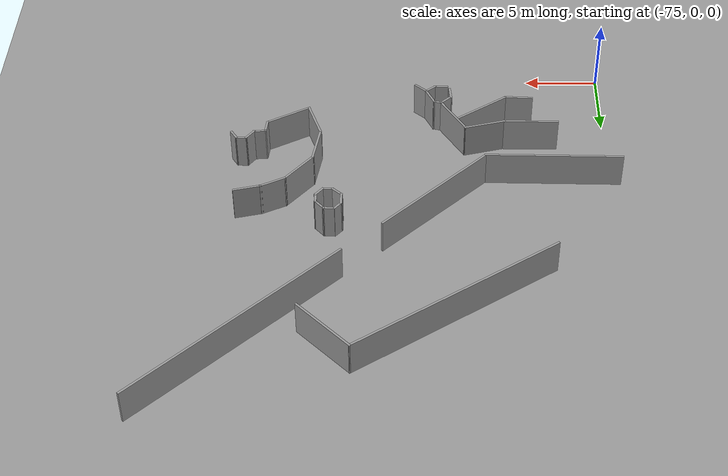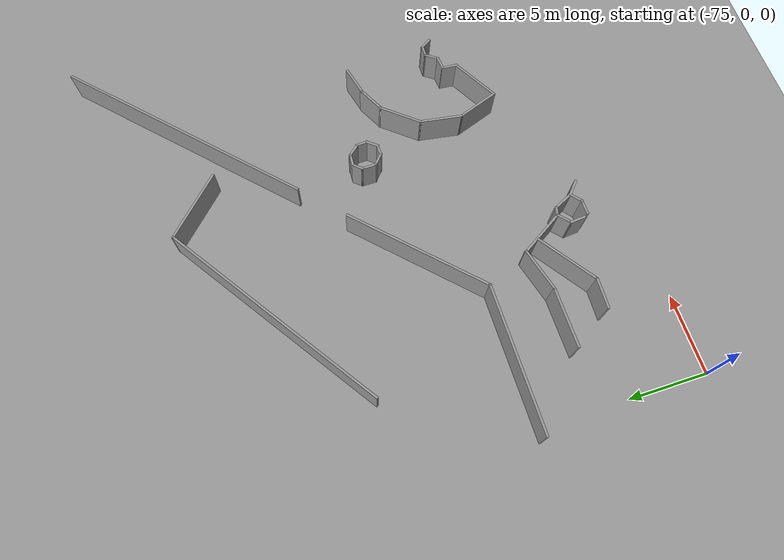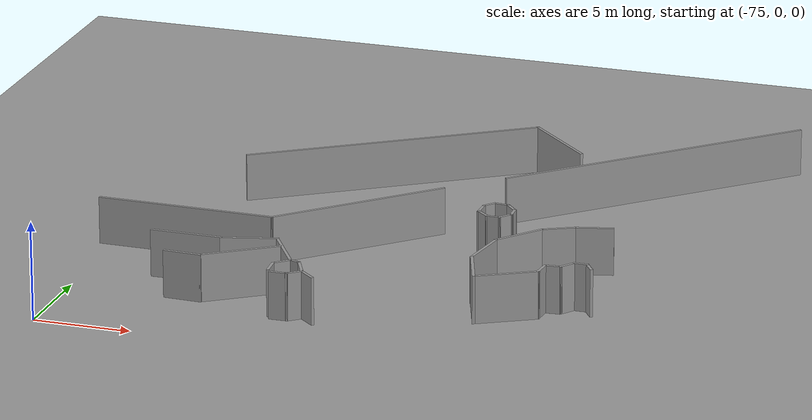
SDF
<sdf version="1.6">
 <world name="default">
  <model name="ground_plane">
   <static>1</static>
   <link name="link">
    <collision name="collision">
     <geometry><plane><normal>0 0 1</normal><size>100 100</size></plane></geometry>
     <surface><friction><ode><mu>100</mu><mu2>50</mu2></ode></friction></surface>
    </collision>
    <visual name="visual">
     <cast_shadows>0</cast_shadows>
     <geometry><plane><normal>0 0 1</normal><size>100 100</size></plane></geometry>
     <material>
      <script><uri>file://media/materials/scripts/gazebo.material</uri><name>Gazebo/Grey</name></script>
     </material>
    </visual>
   </link>
  </model>
  <model name="mall_new_reduce_size">
   <pose>-6.8092 7.5529 0 0 -0 0</pose>
   <link name="Wall_0">
    <collision name="Wall_0_Collision">
     <geometry><box><size>9.25048 0.15 2.5</size></box></geometry>
     <pose>0 0 1.25 0 -0 0</pose>
    </collision>
    <visual name="Wall_0_Visual">
     <pose>0 0 1.25 0 -0 0</pose>
     <geometry><box><size>9.25048 0.15 2.5</size></box></geometry>
     <material>
      <script><uri>file://media/materials/scripts/gazebo.material</uri><name>Gazebo/Grey</name></script>
      <ambient>1 1 1 1</ambient>
     </material>
     <meta><layer>0</layer></meta>
    </visual>
    <pose>-64.3372 3.2996 0 0 -0 -0.010225</pose>
   </link>
   <link name="Wall_10">
    <collision name="Wall_10_Collision">
     <geometry><box><size>15.64 0.15 2.5</size></box></geometry>
     <pose>0 0 1.25 0 -0 0</pose>
    </collision>
    <visual name="Wall_10_Visual">
     <pose>0 0 1.25 0 -0 0</pose>
     <geometry><box><size>15.64 0.15 2.5</size></box></geometry>
     <material>
      <script><uri>file://media/materials/scripts/gazebo.material</uri><name>Gazebo/Grey</name></script>
      <ambient>1 1 1 1</ambient>
     </material>
     <meta><layer>0</layer></meta>
    </visual>
    <pose>-57.6357 15.9234 0 0 -0 0.595213</pose>
   </link>
   <link name="Wall_11">
    <collision name="Wall_11_Collision">
     <geometry><box><size>4.74566 0.15 2.5</size></box></geometry>
     <pose>0 0 1.25 0 -0 0</pose>
    </collision>
    <visual name="Wall_11_Visual">
     <pose>0 0 1.25 0 -0 0</pose>
     <geometry><box><size>4.74566 0.15 2.5</size></box></geometry>
     <material>
      <script><uri>file://media/materials/scripts/gazebo.material</uri><name>Gazebo/Grey</name></script>
      <ambient>1 1 1 1</ambient>
     </material>
     <meta><layer>0</layer></meta>
    </visual>
    <pose>-49.5878 18.6511 0 0 -0 -0.779209</pose>
   </link>
   <link name="Wall_15">
    <collision name="Wall_15_Collision">
     <geometry><box><size>17.0313 0.15 2.5</size></box></geometry>
     <pose>0 0 1.25 0 -0 0</pose>
    </collision>
    <visual name="Wall_15_Visual">
     <pose>0 0 1.25 0 -0 0</pose>
     <geometry><box><size>17.0313 0.15 2.5</size></box></geometry>
     <material>
      <script><uri>file://media/materials/scripts/gazebo.material</uri><name>Gazebo/Grey</name></script>
      <ambient>1 1 1 1</ambient>
     </material>
     <meta><layer>0</layer></meta>
    </visual>
    <pose>-44.3443 18.1837 0 0 -0 0.766862</pose>
   </link>
   <link name="Wall_2">
    <collision name="Wall_2_Collision">
     <geometry><box><size>9.63799 0.15 2.5</size></box></geometry>
     <pose>0 0 1.25 0 -0 0</pose>
    </collision>
    <visual name="Wall_2_Visual">
     <pose>0 0 1.25 0 -0 0</pose>
     <geometry><box><size>9.63799 0.15 2.5</size></box></geometry>
     <material>
      <script><uri>file://media/materials/scripts/gazebo.material</uri><name>Gazebo/Grey</name></script>
      <ambient>1 1 1 1</ambient>
     </material>
     <meta><layer>0</layer></meta>
    </visual>
    <pose>-56.4049 6.57954 0 0 -0 -2.36452</pose>
   </link>
   <link name="Wall_358">
    <collision name="Wall_358_Collision">
     <geometry><box><size>3.19362 0.15 2.5</size></box></geometry>
     <pose>0 0 1.25 0 -0 0</pose>
    </collision>
    <visual name="Wall_358_Visual">
     <pose>0 0 1.25 0 -0 0</pose>
     <geometry><box><size>3.19362 0.15 2.5</size></box></geometry>
     <material>
      <script><uri>file://media/materials/scripts/gazebo.material</uri><name>Gazebo/Grey</name></script>
      <ambient>1 1 1 1</ambient>
     </material>
     <meta><layer>0</layer></meta>
    </visual>
    <pose>-46.3456 -0.707961 0 0 -0 0.516499</pose>
   </link>
   <link name="Wall_359">
    <collision name="Wall_359_Collision">
     <geometry><box><size>1.04111 0.15 2.5</size></box></geometry>
     <pose>0 0 1.25 0 -0 0</pose>
    </collision>
    <visual name="Wall_359_Visual">
     <pose>0 0 1.25 0 -0 0</pose>
     <geometry><box><size>1.04111 0.15 2.5</size></box></geometry>
     <material>
      <script><uri>file://media/materials/scripts/gazebo.material</uri><name>Gazebo/Grey</name></script>
      <ambient>1 1 1 1</ambient>
     </material>
     <meta><layer>0</layer></meta>
    </visual>
    <pose>-44.9848 0.498691 0 0 -0 1.4865</pose>
   </link>
   <link name="Wall_360">
    <collision name="Wall_360_Collision">
     <geometry><box><size>0.919989 0.15 2.5</size></box></geometry>
     <pose>0 0 1.25 0 -0 0</pose>
    </collision>
    <visual name="Wall_360_Visual">
     <pose>0 0 1.25 0 -0 0</pose>
     <geometry><box><size>0.919989 0.15 2.5</size></box></geometry>
     <material>
      <script><uri>file://media/materials/scripts/gazebo.material</uri><name>Gazebo/Grey</name></script>
      <ambient>1 1 1 1</ambient>
     </material>
     <meta><layer>0</layer></meta>
    </visual>
    <pose>-44.5529 0.979904 0 0 -0 0.096885</pose>
   </link>
   <link name="Wall_361">
    <collision name="Wall_361_Collision">
     <geometry><box><size>0.974663 0.15 2.5</size></box></geometry>
     <pose>0 0 1.25 0 -0 0</pose>
    </collision>
    <visual name="Wall_361_Visual">
     <pose>0 0 1.25 0 -0 0</pose>
     <geometry><box><size>0.974663 0.15 2.5</size></box></geometry>
     <material>
      <script><uri>file://media/materials/scripts/gazebo.material</uri><name>Gazebo/Grey</name></script>
      <ambient>1 1 1 1</ambient>
     </material>
     <meta><layer>0</layer></meta>
    </visual>
    <pose>-43.9353 1.35039 0 0 -0 0.941096</pose>
   </link>
   <link name="Wall_362">
    <collision name="Wall_362_Collision">
     <geometry><box><size>0.806122 0.15 2.5</size></box></geometry>
     <pose>0 0 1.25 0 -0 0</pose>
    </collision>
    <visual name="Wall_362_Visual">
     <pose>0 0 1.25 0 -0 0</pose>
     <geometry><box><size>0.806122 0.15 2.5</size></box></geometry>
     <material>
      <script><uri>file://media/materials/scripts/gazebo.material</uri><name>Gazebo/Grey</name></script>
      <ambient>1 1 1 1</ambient>
     </material>
     <meta><layer>0</layer></meta>
    </visual>
    <pose>-43.3645 1.68786 0 0 -0 -0.012851</pose>
   </link>
   <link name="Wall_363">
    <collision name="Wall_363_Collision">
     <geometry><box><size>0.82835 0.15 2.5</size></box></geometry>
     <pose>0 0 1.25 0 -0 0</pose>
    </collision>
    <visual name="Wall_363_Visual">
     <pose>0 0 1.25 0 -0 0</pose>
     <geometry><box><size>0.82835 0.15 2.5</size></box></geometry>
     <material>
      <script><uri>file://media/materials/scripts/gazebo.material</uri><name>Gazebo/Grey</name></script>
      <ambient>1 1 1 1</ambient>
     </material>
     <meta><layer>0</layer></meta>
    </visual>
    <pose>-42.8527 1.39011 0 0 -0 -0.998351</pose>
   </link>
   <link name="Wall_373">
    <collision name="Wall_373_Collision">
     <geometry><box><size>1.91289 0.15 2.5</size></box></geometry>
     <pose>0 0 1.25 0 -0 0</pose>
    </collision>
    <visual name="Wall_373_Visual">
     <pose>0 0 1.25 0 -0 0</pose>
     <geometry><box><size>1.91289 0.15 2.5</size></box></geometry>
     <material>
      <script><uri>file://media/materials/scripts/gazebo.material</uri><name>Gazebo/Grey</name></script>
      <ambient>1 1 1 1</ambient>
     </material>
     <meta><layer>0</layer></meta>
    </visual>
    <pose>-44.1511 6.70423 0 0 -0 -2.89655</pose>
   </link>
   <link name="Wall_374">
    <collision name="Wall_374_Collision">
     <geometry><box><size>1.87613 0.15 2.5</size></box></geometry>
     <pose>0 0 1.25 0 -0 0</pose>
    </collision>
    <visual name="Wall_374_Visual">
     <pose>0 0 1.25 0 -0 0</pose>
     <geometry><box><size>1.87613 0.15 2.5</size></box></geometry>
     <material>
      <script><uri>file://media/materials/scripts/gazebo.material</uri><name>Gazebo/Grey</name></script>
      <ambient>1 1 1 1</ambient>
     </material>
     <meta><layer>0</layer></meta>
    </visual>
    <pose>-45.7738 6.11041 0 0 -0 -2.66657</pose>
   </link>
   <link name="Wall_375">
    <collision name="Wall_375_Collision">
     <geometry><box><size>2.86167 0.15 2.5</size></box></geometry>
     <pose>0 0 1.25 0 -0 0</pose>
    </collision>
    <visual name="Wall_375_Visual">
     <pose>0 0 1.25 0 -0 0</pose>
     <geometry><box><size>2.86167 0.15 2.5</size></box></geometry>
     <material>
      <script><uri>file://media/materials/scripts/gazebo.material</uri><name>Gazebo/Grey</name></script>
      <ambient>1 1 1 1</ambient>
     </material>
     <meta><layer>0</layer></meta>
    </visual>
    <pose>-47.4141 4.66594 0 0 -0 -2.25608</pose>
   </link>
   <link name="Wall_376">
    <collision name="Wall_376_Collision">
     <geometry><box><size>2.77757 0.15 2.5</size></box></geometry>
     <pose>0 0 1.25 0 -0 0</pose>
    </collision>
    <visual name="Wall_376_Visual">
     <pose>0 0 1.25 0 -0 0</pose>
     <geometry><box><size>2.77757 0.15 2.5</size></box></geometry>
     <material>
      <script><uri>file://media/materials/scripts/gazebo.material</uri><name>Gazebo/Grey</name></script>
      <ambient>1 1 1 1</ambient>
     </material>
     <meta><layer>0</layer></meta>
    </visual>
    <pose>-48.4747 2.30335 0 0 -0 -1.72552</pose>
   </link>
   <link name="Wall_377">
    <collision name="Wall_377_Collision">
     <geometry><box><size>2.81467 0.15 2.5</size></box></geometry>
     <pose>0 0 1.25 0 -0 0</pose>
    </collision>
    <visual name="Wall_377_Visual">
     <pose>0 0 1.25 0 -0 0</pose>
     <geometry><box><size>2.81467 0.15 2.5</size></box></geometry>
     <material>
      <script><uri>file://media/materials/scripts/gazebo.material</uri><name>Gazebo/Grey</name></script>
      <ambient>1 1 1 1</ambient>
     </material>
     <meta><layer>0</layer></meta>
    </visual>
    <pose>-48.2323 -0.265382 0 0 -0 -1.23042</pose>
   </link>
   <link name="Wall_391">
    <collision name="Wall_391_Collision">
     <geometry><box><size>0.801054 0.15 2.5</size></box></geometry>
     <pose>0 0 1.25 0 -0 0</pose>
    </collision>
    <visual name="Wall_391_Visual">
     <pose>0 0 1.25 0 -0 0</pose>
     <geometry><box><size>0.801054 0.15 2.5</size></box></geometry>
     <material>
      <script><uri>file://media/materials/scripts/gazebo.material</uri><name>Gazebo/Grey</name></script>
      <ambient>1 1 1 1</ambient>
     </material>
     <meta><layer>0</layer></meta>
    </visual>
    <pose>-49.5259 8.56782 0 0 -0 -0.059644</pose>
   </link>
   <link name="Wall_392">
    <collision name="Wall_392_Collision">
     <geometry><box><size>0.977816 0.15 2.5</size></box></geometry>
     <pose>0 0 1.25 0 -0 0</pose>
    </collision>
    <visual name="Wall_392_Visual">
     <pose>0 0 1.25 0 -0 0</pose>
     <geometry><box><size>0.977816 0.15 2.5</size></box></geometry>
     <material>
      <script><uri>file://media/materials/scripts/gazebo.material</uri><name>Gazebo/Grey</name></script>
      <ambient>1 1 1 1</ambient>
     </material>
     <meta><layer>0</layer></meta>
    </visual>
    <pose>-48.9309 8.24512 0 0 -0 -0.842257</pose>
   </link>
   <link name="Wall_393">
    <collision name="Wall_393_Collision">
     <geometry><box><size>0.800275 0.15 2.5</size></box></geometry>
     <pose>0 0 1.25 0 -0 0</pose>
    </collision>
    <visual name="Wall_393_Visual">
     <pose>0 0 1.25 0 -0 0</pose>
     <geometry><box><size>0.800275 0.15 2.5</size></box></geometry>
     <material>
      <script><uri>file://media/materials/scripts/gazebo.material</uri><name>Gazebo/Grey</name></script>
      <ambient>1 1 1 1</ambient>
     </material>
     <meta><layer>0</layer></meta>
    </visual>
    <pose>-48.6442 7.60579 0 0 -0 -1.53669</pose>
   </link>
   <link name="Wall_394">
    <collision name="Wall_394_Collision">
     <geometry><box><size>0.859742 0.15 2.5</size></box></geometry>
     <pose>0 0 1.25 0 -0 0</pose>
    </collision>
    <visual name="Wall_394_Visual">
     <pose>0 0 1.25 0 -0 0</pose>
     <geometry><box><size>0.859742 0.15 2.5</size></box></geometry>
     <material>
      <script><uri>file://media/materials/scripts/gazebo.material</uri><name>Gazebo/Grey</name></script>
      <ambient>1 1 1 1</ambient>
     </material>
     <meta><layer>0</layer></meta>
    </visual>
    <pose>-48.8588 7.00804 0 0 -0 -2.23994</pose>
   </link>
   <link name="Wall_395">
    <collision name="Wall_395_Collision">
     <geometry><box><size>0.794353 0.15 2.5</size></box></geometry>
     <pose>0 0 1.25 0 -0 0</pose>
    </collision>
    <visual name="Wall_395_Visual">
     <pose>0 0 1.25 0 -0 0</pose>
     <geometry><box><size>0.794353 0.15 2.5</size></box></geometry>
     <material>
      <script><uri>file://media/materials/scripts/gazebo.material</uri><name>Gazebo/Grey</name></script>
      <ambient>1 1 1 1</ambient>
     </material>
     <meta><layer>0</layer></meta>
    </visual>
    <pose>-49.3956 6.7297 0 0 -0 3.14159</pose>
   </link>
   <link name="Wall_396">
    <collision name="Wall_396_Collision">
     <geometry><box><size>0.916096 0.15 2.5</size></box></geometry>
     <pose>0 0 1.25 0 -0 0</pose>
    </collision>
    <visual name="Wall_396_Visual">
     <pose>0 0 1.25 0 -0 0</pose>
     <geometry><box><size>0.916096 0.15 2.5</size></box></geometry>
     <material>
      <script><uri>file://media/materials/scripts/gazebo.material</uri><name>Gazebo/Grey</name></script>
      <ambient>1 1 1 1</ambient>
     </material>
     <meta><layer>0</layer></meta>
    </visual>
    <pose>-50.0103 6.98341 0 0 -0 2.41764</pose>
   </link>
   <link name="Wall_397">
    <collision name="Wall_397_Collision">
     <geometry><box><size>1.03328 0.15 2.5</size></box></geometry>
     <pose>0 0 1.25 0 -0 0</pose>
    </collision>
    <visual name="Wall_397_Visual">
     <pose>0 0 1.25 0 -0 0</pose>
     <geometry><box><size>1.03328 0.15 2.5</size></box></geometry>
     <material>
      <script><uri>file://media/materials/scripts/gazebo.material</uri><name>Gazebo/Grey</name></script>
      <ambient>1 1 1 1</ambient>
     </material>
     <meta><layer>0</layer></meta>
    </visual>
    <pose>-50.3056 7.67321 0 0 -0 1.56452</pose>
   </link>
   <link name="Wall_398">
    <collision name="Wall_398_Collision">
     <geometry><box><size>0.752241 0.15 2.5</size></box></geometry>
     <pose>0 0 1.25 0 -0 0</pose>
    </collision>
    <visual name="Wall_398_Visual">
     <pose>0 0 1.25 0 -0 0</pose>
     <geometry><box><size>0.752241 0.15 2.5</size></box></geometry>
     <material>
      <script><uri>file://media/materials/scripts/gazebo.material</uri><name>Gazebo/Grey</name></script>
      <ambient>1 1 1 1</ambient>
     </material>
     <meta><layer>0</layer></meta>
    </visual>
    <pose>-50.1044 8.34606 0 0 -0 0.875499</pose>
   </link>
   <link name="Wall_405">
    <collision name="Wall_405_Collision">
     <geometry><box><size>1.04728 0.15 2.5</size></box></geometry>
     <pose>0 0 1.25 0 -0 0</pose>
    </collision>
    <visual name="Wall_405_Visual">
     <pose>0 0 1.25 0 -0 0</pose>
     <geometry><box><size>1.04728 0.15 2.5</size></box></geometry>
     <material>
      <script><uri>file://media/materials/scripts/gazebo.material</uri><name>Gazebo/Grey</name></script>
      <ambient>1 1 1 1</ambient>
     </material>
     <meta><layer>0</layer></meta>
    </visual>
    <pose>-57.5295 -3.26618 0 0 -0 1.65307</pose>
   </link>
   <link name="Wall_406">
    <collision name="Wall_406_Collision">
     <geometry><box><size>1.06244 0.15 2.5</size></box></geometry>
     <pose>0 0 1.25 0 -0 0</pose>
    </collision>
    <visual name="Wall_406_Visual">
     <pose>0 0 1.25 0 -0 0</pose>
     <geometry><box><size>1.06244 0.15 2.5</size></box></geometry>
     <material>
      <script><uri>file://media/materials/scripts/gazebo.material</uri><name>Gazebo/Grey</name></script>
      <ambient>1 1 1 1</ambient>
     </material>
     <meta><layer>0</layer></meta>
    </visual>
    <pose>-57.2204 -2.50531 0 0 -0 0.758329</pose>
   </link>
   <link name="Wall_407">
    <collision name="Wall_407_Collision">
     <geometry><box><size>0.639841 0.15 2.5</size></box></geometry>
     <pose>0 0 1.25 0 -0 0</pose>
    </collision>
    <visual name="Wall_407_Visual">
     <pose>0 0 1.25 0 -0 0</pose>
     <geometry><box><size>0.639841 0.15 2.5</size></box></geometry>
     <material>
      <script><uri>file://media/materials/scripts/gazebo.material</uri><name>Gazebo/Grey</name></script>
      <ambient>1 1 1 1</ambient>
     </material>
     <meta><layer>0</layer></meta>
    </visual>
    <pose>-56.6521 -2.25288 0 0 -0 -0.253027</pose>
   </link>
   <link name="Wall_408">
    <collision name="Wall_408_Collision">
     <geometry><box><size>1.42721 0.15 2.5</size></box></geometry>
     <pose>0 0 1.25 0 -0 0</pose>
    </collision>
    <visual name="Wall_408_Visual">
     <pose>0 0 1.25 0 -0 0</pose>
     <geometry><box><size>1.42721 0.15 2.5</size></box></geometry>
     <material>
      <script><uri>file://media/materials/scripts/gazebo.material</uri><name>Gazebo/Grey</name></script>
      <ambient>1 1 1 1</ambient>
     </material>
     <meta><layer>0</layer></meta>
    </visual>
    <pose>-56.1375 -2.87459 0 0 -0 -1.12122</pose>
   </link>
   <link name="Wall_409">
    <collision name="Wall_409_Collision">
     <geometry><box><size>1.12501 0.15 2.5</size></box></geometry>
     <pose>0 0 1.25 0 -0 0</pose>
    </collision>
    <visual name="Wall_409_Visual">
     <pose>0 0 1.25 0 -0 0</pose>
     <geometry><box><size>1.12501 0.15 2.5</size></box></geometry>
     <material>
      <script><uri>file://media/materials/scripts/gazebo.material</uri><name>Gazebo/Grey</name></script>
      <ambient>1 1 1 1</ambient>
     </material>
     <meta><layer>0</layer></meta>
    </visual>
    <pose>-55.4949 -3.78767 0 0 -0 -0.724728</pose>
   </link>
   <link name="Wall_417">
    <collision name="Wall_417_Collision">
     <geometry><box><size>0.945041 0.15 2.5</size></box></geometry>
     <pose>0 0 1.25 0 -0 0</pose>
    </collision>
    <visual name="Wall_417_Visual">
     <pose>0 0 1.25 0 -0 0</pose>
     <geometry><box><size>0.945041 0.15 2.5</size></box></geometry>
     <material>
      <script><uri>file://media/materials/scripts/gazebo.material</uri><name>Gazebo/Grey</name></script>
      <ambient>1 1 1 1</ambient>
     </material>
     <meta><layer>0</layer></meta>
    </visual>
    <pose>-56.1664 -3.71764 0 0 -0 -2.4512</pose>
   </link>
   <link name="Wall_418">
    <collision name="Wall_418_Collision">
     <geometry><box><size>0.981722 0.15 2.5</size></box></geometry>
     <pose>0 0 1.25 0 -0 0</pose>
    </collision>
    <visual name="Wall_418_Visual">
     <pose>0 0 1.25 0 -0 0</pose>
     <geometry><box><size>0.981722 0.15 2.5</size></box></geometry>
     <material>
      <script><uri>file://media/materials/scripts/gazebo.material</uri><name>Gazebo/Grey</name></script>
      <ambient>1 1 1 1</ambient>
     </material>
     <meta><layer>0</layer></meta>
    </visual>
    <pose>-56.8887 -3.96587 0 0 -0 -3.13011</pose>
   </link>
   <link name="Wall_422">
    <collision name="Wall_422_Collision">
     <geometry><box><size>3.74241 0.15 2.5</size></box></geometry>
     <pose>0 0 1.25 0 -0 0</pose>
    </collision>
    <visual name="Wall_422_Visual">
     <pose>0 0 1.25 0 -0 0</pose>
     <geometry><box><size>3.74241 0.15 2.5</size></box></geometry>
     <material>
      <script><uri>file://media/materials/scripts/gazebo.material</uri><name>Gazebo/Grey</name></script>
      <ambient>1 1 1 1</ambient>
     </material>
     <meta><layer>0</layer></meta>
    </visual>
    <pose>-62.9887 -0.242289 0 0 -0 0</pose>
   </link>
   <link name="Wall_423">
    <collision name="Wall_423_Collision">
     <geometry><box><size>2.9099 0.15 2.5</size></box></geometry>
     <pose>0 0 1.25 0 -0 0</pose>
    </collision>
    <visual name="Wall_423_Visual">
     <pose>0 0 1.25 0 -0 0</pose>
     <geometry><box><size>2.9099 0.15 2.5</size></box></geometry>
     <material>
      <script><uri>file://media/materials/scripts/gazebo.material</uri><name>Gazebo/Grey</name></script>
      <ambient>1 1 1 1</ambient>
     </material>
     <meta><layer>0</layer></meta>
    </visual>
    <pose>-59.8301 0.103872 0 0 -0 0.260825</pose>
   </link>
   <link name="Wall_424">
    <collision name="Wall_424_Collision">
     <geometry><box><size>3.24233 0.15 2.5</size></box></geometry>
     <pose>0 0 1.25 0 -0 0</pose>
    </collision>
    <visual name="Wall_424_Visual">
     <pose>0 0 1.25 0 -0 0</pose>
     <geometry><box><size>3.24233 0.15 2.5</size></box></geometry>
     <material>
      <script><uri>file://media/materials/scripts/gazebo.material</uri><name>Gazebo/Grey</name></script>
      <ambient>1 1 1 1</ambient>
     </material>
     <meta><layer>0</layer></meta>
    </visual>
    <pose>-57.693 -0.870766 0 0 -0 -1.02409</pose>
   </link>
   <link name="Wall_428">
    <collision name="Wall_428_Collision">
     <geometry><box><size>4.18793 0.15 2.5</size></box></geometry>
     <pose>0 0 1.25 0 -0 0</pose>
    </collision>
    <visual name="Wall_428_Visual">
     <pose>0 0 1.25 0 -0 0</pose>
     <geometry><box><size>4.18793 0.15 2.5</size></box></geometry>
     <material>
      <script><uri>file://media/materials/scripts/gazebo.material</uri><name>Gazebo/Grey</name></script>
      <ambient>1 1 1 1</ambient>
     </material>
     <meta><layer>0</layer></meta>
    </visual>
    <pose>-59.6593 -1.6746 0 0 -0 0.610537</pose>
   </link>
   <link name="Wall_431">
    <collision name="Wall_431_Collision">
     <geometry><box><size>1.99069 0.15 2.5</size></box></geometry>
     <pose>0 0 1.25 0 -0 0</pose>
    </collision>
    <visual name="Wall_431_Visual">
     <pose>0 0 1.25 0 -0 0</pose>
     <geometry><box><size>1.99069 0.15 2.5</size></box></geometry>
     <material>
      <script><uri>file://media/materials/scripts/gazebo.material</uri><name>Gazebo/Grey</name></script>
      <ambient>1 1 1 1</ambient>
     </material>
     <meta><layer>0</layer></meta>
    </visual>
    <pose>-62.246 -2.82159 0 0 -0 -0.042156</pose>
   </link>
   <static>1</static>
  </model>
  <model name="ground_plane_0">
   <static>1</static>
   <link name="link">
    <collision name="collision">
     <geometry><plane><normal>0 0 1</normal><size>100 100</size></plane></geometry>
     <surface><friction><ode><mu>100</mu><mu2>50</mu2></ode></friction></surface>
    </collision>
    <visual name="visual">
     <cast_shadows>0</cast_shadows>
     <geometry><plane><normal>0 0 1</normal><size>100 100</size></plane></geometry>
     <material>
      <script><uri>file://media/materials/scripts/gazebo.material</uri><name>Gazebo/Grey</name></script>
     </material>
    </visual>
   </link>
   <pose>-74.6089 17.2033 0 0 -0 0</pose>
  </model>
 </world>
</sdf>
